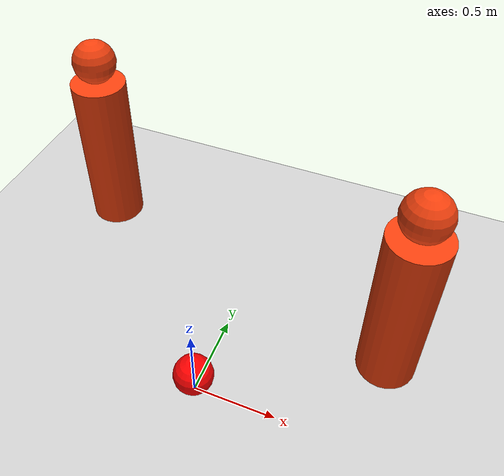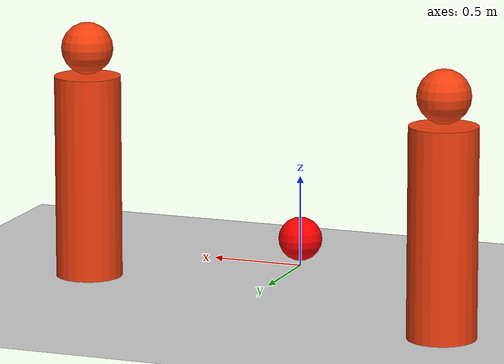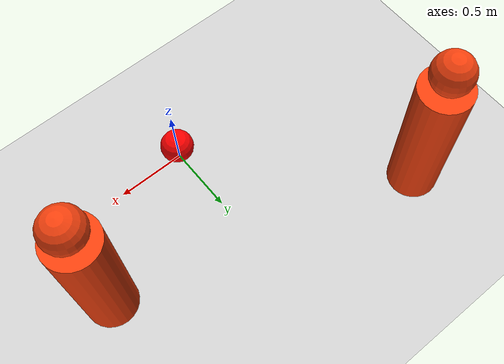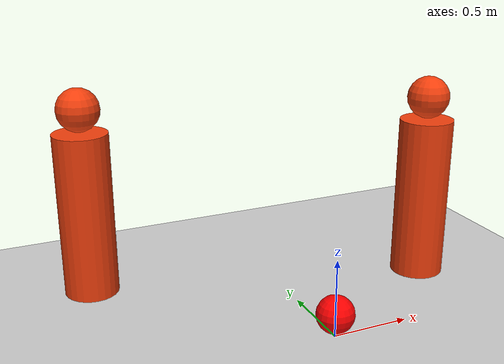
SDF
<sdf version="1.6">
 <world name="default">
  <plugin filename="gz-sim-physics-system" name="gz::sim::systems::Physics"/>
  <plugin filename="gz-sim-user-commands-system" name="gz::sim::systems::UserCommands"/>
  <plugin filename="gz-sim-sensors-system" name="gz::sim::systems::Sensors">
   <render_engine>ogre2</render_engine>
  </plugin>
  <plugin filename="gz-sim-imu-system" name="gz::sim::systems::Imu"/>
  <light name="sun" type="directional">
   <cast_shadows>0</cast_shadows>
   <pose>0 0 10 0 0 0</pose>
   <diffuse>0.8 0.8 0.8 1</diffuse>
   <specular>0.8 0.8 0.8 1</specular>
   <attenuation>
    <range>1000</range>
    <constant>0.9</constant>
    <linear>0.01</linear>
    <quadratic>0.001</quadratic>
   </attenuation>
   <direction>-0.5 0.1 -0.9</direction>
  </light>
  <model name="ground_plane">
   <static>1</static>
   <link name="link">
    <collision name="collision">
     <geometry><plane><normal>0 0 1</normal><size>100 100</size></plane></geometry>
    </collision>
    <visual name="visual">
     <geometry><plane><normal>0 0 1</normal><size>100 100</size></plane></geometry>
     <material>
      <ambient>0.8 0.8 0.8 1</ambient>
      <diffuse>0.8 0.8 0.8 1</diffuse>
      <specular>0.8 0.8 0.8 1</specular>
     </material>
    </visual>
   </link>
  </model>
  <scene><shadows>0</shadows></scene>
  <physics name="3ms" type="ode">
   <max_step_size>0.003</max_step_size>
   <real_time_factor>1</real_time_factor>
  </physics>
  <model name="human_1">
   <static>1</static>
   <pose>1.0 0.6 0 0 0 0</pose>
   <link name="body">
    <visual name="torso">
     <pose>0 0 0.55 0 0 0</pose>
     <geometry><cylinder><radius>0.18</radius><length>1.1</length></cylinder></geometry>
     <material>
      <ambient>0.95 0.25 0.05 1</ambient>
      <diffuse>0.95 0.25 0.05 1</diffuse>
      <emissive>0.6 0.15 0.02 1</emissive>
     </material>
    </visual>
    <visual name="head">
     <pose>0 0 1.25 0 0 0</pose>
     <geometry><sphere><radius>0.14</radius></sphere></geometry>
     <material>
      <ambient>0.95 0.25 0.05 1</ambient>
      <diffuse>0.95 0.25 0.05 1</diffuse>
      <emissive>0.6 0.15 0.02 1</emissive>
     </material>
    </visual>
    <collision name="torso_collision">
     <pose>0 0 0.55 0 0 0</pose>
     <geometry><cylinder><radius>0.18</radius><length>1.1</length></cylinder></geometry>
    </collision>
   </link>
  </model>
  <model name="human_2">
   <static>1</static>
   <pose>-1.2 1.2 0 0 0 0</pose>
   <link name="body">
    <visual name="torso">
     <pose>0 0 0.55 0 0 0</pose>
     <geometry><cylinder><radius>0.18</radius><length>1.1</length></cylinder></geometry>
     <material>
      <ambient>0.95 0.25 0.05 1</ambient>
      <diffuse>0.95 0.25 0.05 1</diffuse>
      <emissive>0.6 0.15 0.02 1</emissive>
     </material>
    </visual>
    <visual name="head">
     <pose>0 0 1.25 0 0 0</pose>
     <geometry><sphere><radius>0.14</radius></sphere></geometry>
     <material>
      <ambient>0.95 0.25 0.05 1</ambient>
      <diffuse>0.95 0.25 0.05 1</diffuse>
      <emissive>0.6 0.15 0.02 1</emissive>
     </material>
    </visual>
    <collision name="torso_collision">
     <pose>0 0 0.55 0 0 0</pose>
     <geometry><cylinder><radius>0.18</radius><length>1.1</length></cylinder></geometry>
    </collision>
   </link>
  </model>
  <model name="goal_marker">
   <static>1</static>
   <pose>0 0 0.15 0 0 0</pose>
   <link name="marker">
    <visual name="marker_visual">
     <geometry><sphere><radius>0.12</radius></sphere></geometry>
     <material><ambient>1 0 0 1</ambient><diffuse>1 0 0 1</diffuse><emissive>0.6 0 0 1</emissive></material>
    </visual>
   </link>
  </model>
 </world>
</sdf>
